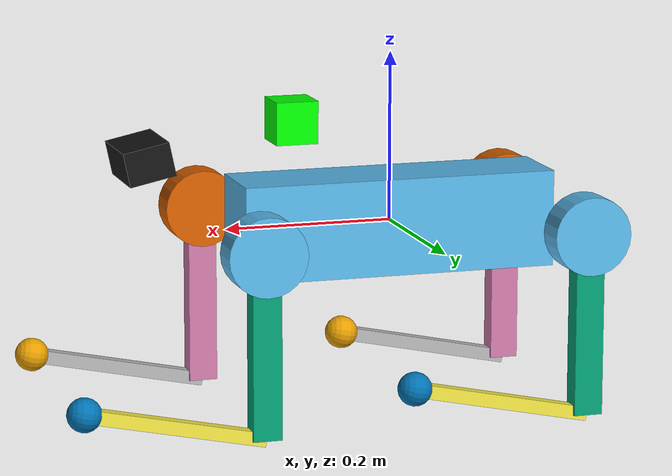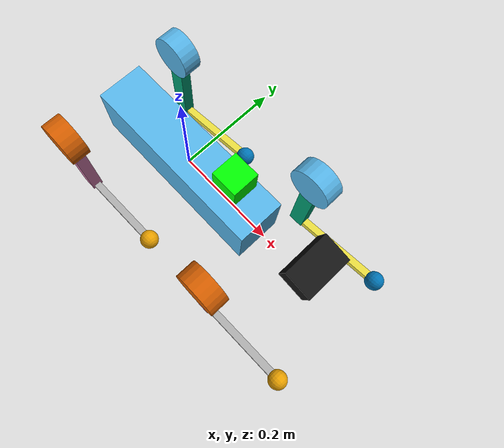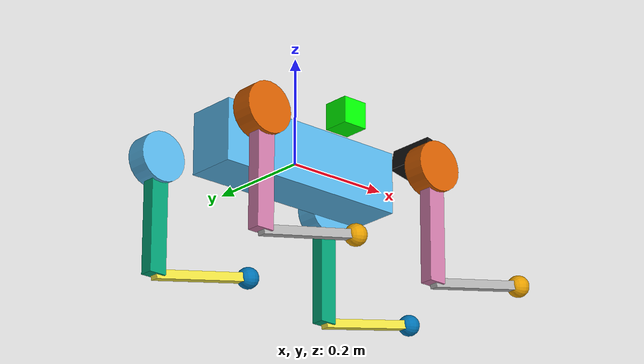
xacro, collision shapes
<?xml version="1.0"?>

<robot name="go2" xmlns:xacro="http://www.ros.org/wiki/xacro">

    <xacro:arg name="DEBUG" default="false"/>
    <xacro:arg name="xyz" default="0.12 0.0 0.175" />
    <xacro:arg name="rpy" default="0 0 0" />
    <xacro:arg name="use_camera" default="true"/>
    <xacro:arg name="use_lidar" default="false"/>
    <!-- Positive pitch rotates the camera optical axis from +X toward -Z. -->
    <xacro:arg name="camera_pitch" default="0.20944"/>

    <xacro:include filename="$(find go2_description)/xacro/const.xacro"/>
    <xacro:include filename="$(find go2_description)/xacro/materials.xacro"/>
    <xacro:include filename="$(find go2_description)/xacro/leg.xacro"/>
    <xacro:include filename="$(find go2_description)/xacro/gazebo.xacro"/>
    <xacro:if value="$(arg use_lidar)">
        <xacro:include filename="$(find velodyne_description)/urdf/HDL-32E.urdf.xacro"/>
    </xacro:if>

    <!-- Rotor related joint and link is only for demonstrate location. -->
    <!-- Actually, the rotor will rotate and the joint is not fixed. Reduction ratio should be considered. -->

    <!-- Debug mode will hung up the robot, use "true" or "false" to switch it. -->
    <xacro:if value="$(arg DEBUG)">
        <link name="world"/>
        <joint name="base_static_joint" type="fixed">
            <origin rpy="0 0 0" xyz="0 0 0"/>
            <parent link="world"/>
            <child link="base"/>
        </joint>
    </xacro:if>

    <link name="base">
        <visual>
            <origin rpy="0 0 0" xyz="0 0 0"/>
            <geometry>
                <box size="0.001 0.001 0.001"/>
            </geometry>
        </visual>
    </link>

    <joint name="floating_base" type="fixed">
        <origin rpy="0 0 0" xyz="0 0 0"/>
        <parent link="base"/>
        <child link="trunk"/>
    </joint>

    <link name="trunk">
        <visual>
            <origin rpy="0 0 0" xyz="0 0 0"/>
            <geometry>
                <mesh filename="package://go2_description/meshes/trunk.dae" scale="1 1 1"/>
            </geometry>
        </visual>
        <collision>
            <origin rpy="0 0 0" xyz="0 0 0"/>
            <geometry>
                <box size="${trunk_length} ${trunk_width} ${trunk_height}"/>
            </geometry>
        </collision>
        <inertial>
            <origin rpy="0 0 0" xyz="${trunk_com_x} ${trunk_com_y} ${trunk_com_z}"/>
            <mass value="${trunk_mass}"/>
            <inertia
                ixx="${trunk_ixx}" ixy="${trunk_ixy}" ixz="${trunk_ixz}"
                iyy="${trunk_iyy}" iyz="${trunk_iyz}"
                izz="${trunk_izz}"/>
        </inertial>
    </link>

    <joint name="imu_joint" type="fixed">
        <parent link="trunk"/>
        <child link="imu_link"/>
        <origin xyz="0.12 0 0.125" rpy="0 0 0"/>
    </joint>

    <!-- IMU -->
    <link name="imu_link">
        <collision>
        <origin xyz="0 0 0" rpy="0 0 0"/>
        <geometry>
            <box size="0.05 0.05 0.05"/>
        </geometry>
        </collision>
        <visual>
        <origin xyz="0 0 0" rpy="0 0 0"/>
        <geometry>
            <box size="0.05 0.05 0.05"/>
        </geometry>
        <material name="green">
            <color rgba="0 1 0 1"/>
        </material>
        </visual>
        <inertial>
        <mass value="1e-2" />
        <origin xyz="0 0 0" rpy="0 0 0"/>
        <inertia ixx="1e-6" ixy="0" ixz="0" iyy="1e-6" iyz="0" izz="1e-6" />
        </inertial>
    </link>

    <xacro:if value="$(arg use_camera)">
        <joint name="rgbd_camera_joint" type="fixed">
            <parent link="trunk"/>
            <child link="rgbd_camera_link"/>
            <origin rpy="0 $(arg camera_pitch) 0" xyz="0.30 0 0.09"/>
        </joint>

        <link name="rgbd_camera_link">
            <visual>
                <origin xyz="0 0 0" rpy="0 0 0"/>
                <geometry><box size="0.055 0.090 0.040"/></geometry>
                <material name="camera_dark">
                    <color rgba="0.08 0.08 0.08 1"/>
                </material>
            </visual>
            <collision>
                <origin xyz="0 0 0" rpy="0 0 0"/>
                <geometry><box size="0.055 0.090 0.040"/></geometry>
            </collision>
            <inertial>
                <mass value="0.08"/>
                <origin xyz="0 0 0" rpy="0 0 0"/>
                <inertia ixx="0.0000647" ixy="0" ixz="0"
                         iyy="0.0000377" iyz="0" izz="0.0000743"/>
            </inertial>
        </link>

        <!-- REP-103 optical coordinates: Z forward, X right, Y down. -->
        <joint name="rgbd_camera_optical_joint" type="fixed">
            <parent link="rgbd_camera_link"/>
            <child link="rgbd_camera_optical_frame"/>
            <origin xyz="0.028 0 0" rpy="-1.57079632679 0 -1.57079632679"/>
        </joint>
        <link name="rgbd_camera_optical_frame"/>

        <gazebo reference="rgbd_camera_link">
            <material>Gazebo/DarkGrey</material>
            <sensor name="rgbd_camera" type="depth">
                <always_on>true</always_on>
                <update_rate>10</update_rate>
                <!-- Avoid Gazebo 11 GUI re-creating the world's saved sun light. -->
                <visualize>false</visualize>
                <camera>
                    <horizontal_fov>1.570796327</horizontal_fov>
                    <image>
                        <width>640</width>
                        <height>480</height>
                        <format>R8G8B8</format>
                    </image>
                    <clip>
                        <near>0.1</near>
                        <far>100.0</far>
                    </clip>
                </camera>
                <plugin name="rgbd_camera_controller" filename="libgazebo_ros_openni_kinect.so">
                    <cameraName>rgbd_camera</cameraName>
                    <alwaysOn>true</alwaysOn>
                    <updateRate>10.0</updateRate>
                    <imageTopicName>image</imageTopicName>
                    <cameraInfoTopicName>camera_info</cameraInfoTopicName>
                    <depthImageTopicName>depth_image</depthImageTopicName>
                    <depthImageCameraInfoTopicName>depth_camera_info</depthImageCameraInfoTopicName>
                    <pointCloudTopicName>points</pointCloudTopicName>
                    <frameName>rgbd_camera_optical_frame</frameName>
                    <pointCloudCutoff>0.1</pointCloudCutoff>
                    <pointCloudCutoffMax>100.0</pointCloudCutoffMax>
                    <baseline>0.0</baseline>
                    <distortionK1>0.0</distortionK1>
                    <distortionK2>0.0</distortionK2>
                    <distortionK3>0.0</distortionK3>
                    <distortionT1>0.0</distortionT1>
                    <distortionT2>0.0</distortionT2>
                </plugin>
            </sensor>
        </gazebo>
    </xacro:if>

    <xacro:if value="$(arg use_lidar)">
      <!-- LiDAR mounting mast: visual-only pole connecting the trunk to the Velodyne -->
      <joint name="lidar_mount_joint" type="fixed">
          <parent link="trunk"/>
          <child link="lidar_mount"/>
          <origin xyz="0.12 0 0.088" rpy="0 0 0"/>
      </joint>

    <link name="lidar_mount">
        <visual>
            <origin xyz="0 0 0" rpy="0 0 0"/>
            <geometry>
                <cylinder radius="0.015" length="0.176"/>
            </geometry>
            <material name="dark_gray">
                <color rgba="0.2 0.2 0.2 1.0"/>
            </material>
        </visual>
        <inertial>
            <origin xyz="0 0 0" rpy="0 0 0"/>
            <mass value="0.01"/>
            <inertia ixx="1e-5" ixy="0" ixz="0" iyy="1e-5" iyz="0" izz="1e-5"/>
        </inertial>
    </link>

    <gazebo reference="lidar_mount">
        <material>Gazebo/DarkGrey</material>
    </gazebo>

      <xacro:HDL-32E parent="trunk" name="velodyne" topic="/velodyne_points" hz="10" min_range="0.3">
          <origin xyz="0.12 0.0 0.175" rpy="0 0 0" />
      </xacro:HDL-32E>
    </xacro:if>

    <!-- Livox-Mid360  -->

    <xacro:leg name="FR" mirror="-1" mirror_dae= "False" front_hind="1"  front_hind_dae="True"  />
    <xacro:leg name="FL" mirror="1"  mirror_dae="True"   front_hind="1"  front_hind_dae="True"  />
    <xacro:leg name="RR" mirror="-1" mirror_dae="False"  front_hind="-1" front_hind_dae="False" />
    <xacro:leg name="RL" mirror="1"  mirror_dae="True"   front_hind="-1" front_hind_dae="False" />
</robot>

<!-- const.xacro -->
<robot xmlns:xacro="http://www.ros.org/wiki/xacro">

    <!-- Constants for robot dimensions -->
    <xacro:property name="PI" value="3.1415926535897931"/>
    <xacro:property name="stick_mass" value="0.00001"/>

    <!-- simplified collision value -->
    <xacro:property name="trunk_width" value="0.0935"/>
    <xacro:property name="trunk_length" value="0.3762"/>
    <xacro:property name="trunk_height" value="0.114"/>
    <xacro:property name="hip_radius" value="0.046"/>
    <xacro:property name="hip_length" value="0.04"/>
    <xacro:property name="thigh_shoulder_radius" value="0.041"/>
    <xacro:property name="thigh_shoulder_length" value="0.032"/>
    <xacro:property name="thigh_width" value="0.0245"/>
    <xacro:property name="thigh_height" value="0.034"/>
    <xacro:property name="calf_width" value="0.016"/>
    <xacro:property name="calf_height" value="0.016"/>
    <xacro:property name="foot_radius" value="0.02"/>
    <xacro:property name="stick_radius" value="0.01"/>
    <xacro:property name="stick_length" value="0.2"/>

    <!-- kinematic value -->
    <xacro:property name="thigh_offset" value="0.0955"/>
    <xacro:property name="thigh_length" value="0.213"/>
    <xacro:property name="calf_length" value="0.213"/>

    <!-- leg offset from trunk center value -->
    <xacro:property name="leg_offset_x" value="0.1934"/>
    <xacro:property name="leg_offset_y" value="0.0465"/>
    <xacro:property name="hip_offset" value="0.0955"/>

    <!-- offset of link locations (left front) -->
    <xacro:property name="hip_offset_x" value="0.1934"/>
    <xacro:property name="hip_offset_y" value="0.0465"/>
    <xacro:property name="hip_offset_z" value="0.0"/>

    <xacro:property name="thigh_offset_x" value="0"/>
    <xacro:property name="thigh_offset_y" value="0.0955"/>
    <xacro:property name="thigh_offset_z" value="0.0"/>

    <xacro:property name="calf_offset_x" value="0.0"/>
    <xacro:property name="calf_offset_y" value="0.0"/>
    <xacro:property name="calf_offset_z" value="-0.213"/>

    <!-- joint limits -->
    <xacro:property name="damping" value="0.0"/>
    <xacro:property name="friction" value="0.0"/>
    <xacro:property name="hip_position_max" value="1.0472"/>
    <xacro:property name="hip_position_min" value="-1.0472"/>
    <xacro:property name="hip_velocity_max" value="30.1"/>
    <xacro:property name="hip_torque_max" value="23.7"/>
    <xacro:property name="thigh_position_max" value="3.4907"/>
    <xacro:property name="thigh_position_min" value="-1.5708"/>
    <xacro:property name="thigh_velocity_max" value="30.1"/>
    <xacro:property name="thigh_torque_max" value="23.7"/>
    <xacro:property name="calf_position_max" value="-0.83776"/>
    <xacro:property name="calf_position_min" value="-2.7227"/>
    <xacro:property name="calf_velocity_max" value="20.06"/>
    <xacro:property name="calf_torque_max" value="35.55"/>

    <!-- dynamics inertial value -->
    <!-- trunk -->
    <xacro:property name="trunk_mass" value="6.921"/>
    <xacro:property name="trunk_com_x" value="0.021112"/>
    <xacro:property name="trunk_com_y" value="0.00"/>
    <xacro:property name="trunk_com_z" value="-0.005366"/>
    <xacro:property name="trunk_ixx" value="0.02448"/>
    <xacro:property name="trunk_ixy" value="0.00012166"/>
    <xacro:property name="trunk_ixz" value="0.0014849"/>
    <xacro:property name="trunk_iyy" value="0.098077"/>
    <xacro:property name="trunk_iyz" value="-3.12E-05"/>
    <xacro:property name="trunk_izz" value="0.107"/>

    <!-- hip (left front) -->
    <xacro:property name="hip_mass" value="0.678"/>
    <xacro:property name="hip_com_x" value="-0.0054"/>
    <xacro:property name="hip_com_y" value="0.00194"/>
    <xacro:property name="hip_com_z" value="-0.000105"/>
    <xacro:property name="hip_ixx" value="0.00048"/>
    <xacro:property name="hip_ixy" value="-3.01E-06"/>
    <xacro:property name="hip_ixz" value="1.11E-06"/>
    <xacro:property name="hip_iyy" value="0.000884"/>
    <xacro:property name="hip_iyz" value="-1.42E-06"/>
    <xacro:property name="hip_izz" value="0.000596"/>

    <!-- thigh -->
    <xacro:property name="thigh_mass" value="1.152"/>
    <xacro:property name="thigh_com_x" value="-0.00374"/>
    <xacro:property name="thigh_com_y" value="-0.0223"/>
    <xacro:property name="thigh_com_z" value="-0.0327"/>
    <xacro:property name="thigh_ixx" value="0.00584"/>
    <xacro:property name="thigh_ixy" value="8.72E-05"/>
    <xacro:property name="thigh_ixz" value="-0.000289"/>
    <xacro:property name="thigh_iyy" value="0.0058"/>
    <xacro:property name="thigh_iyz" value="0.000808"/>
    <xacro:property name="thigh_izz" value="0.00103"/>

    <!-- calf -->
    <xacro:property name="calf_mass" value="0.154"/>
    <xacro:property name="calf_com_x" value="0.00548"/>
    <xacro:property name="calf_com_y" value="-0.000975"/>
    <xacro:property name="calf_com_z" value="-0.115"/>
    <xacro:property name="calf_ixx" value="0.00108"/>
    <xacro:property name="calf_ixy" value="3.4E-07"/>
    <xacro:property name="calf_ixz" value="1.72E-05"/>
    <xacro:property name="calf_iyy" value="0.0011"/>
    <xacro:property name="calf_iyz" value="8.28E-06"/>
    <xacro:property name="calf_izz" value="3.29E-05"/>

    <!-- foot -->
    <xacro:property name="foot_mass" value="0.06"/>

</robot>

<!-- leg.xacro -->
<robot xmlns:xacro="http://www.ros.org/wiki/xacro">

    <xacro:include filename="$(find go2_description)/xacro/transmission.xacro"/>

    <xacro:macro name="leg" params="name mirror mirror_dae front_hind front_hind_dae">

        <joint name="${name}_hip_joint" type="revolute">
            <xacro:if value="${(mirror_dae == False) and (front_hind_dae == True)}">
                <origin rpy="0 0 0" xyz="${leg_offset_x} ${-leg_offset_y} 0"/>
            </xacro:if>
            <xacro:if value="${(mirror_dae == True) and (front_hind_dae == True)}">
                <origin rpy="0 0 0" xyz="${leg_offset_x} ${leg_offset_y} 0"/>
            </xacro:if>
            <xacro:if value="${(mirror_dae == False) and (front_hind_dae == False)}">
                <origin rpy="0 0 0" xyz="${-leg_offset_x} ${-leg_offset_y} 0"/>
            </xacro:if>
            <xacro:if value="${(mirror_dae == True) and (front_hind_dae == False)}">
                <origin rpy="0 0 0" xyz="${-leg_offset_x} ${leg_offset_y} 0"/>
            </xacro:if>
            <parent link="trunk"/>
            <child link="${name}_hip"/>
            <axis xyz="1 0 0"/>
            <dynamics damping="${damping}" friction="${friction}"/>
            <xacro:if value="${(mirror_dae == True)}">
                <limit effort="${hip_torque_max}" velocity="${hip_velocity_max}" lower="${hip_position_min}" upper="${hip_position_max}"/>
            </xacro:if>
            <xacro:if value="${(mirror_dae == False)}">
                <limit effort="${hip_torque_max}" velocity="${hip_velocity_max}" lower="${-hip_position_max}" upper="${-hip_position_min}"/>
            </xacro:if>
        </joint>

        <link name="${name}_hip">
            <visual>
                <xacro:if value="${(mirror_dae == True) and (front_hind_dae == True)}">
                    <origin rpy="0 0 0" xyz="0 0 0"/>
                </xacro:if>
                <xacro:if value="${(mirror_dae == False) and (front_hind_dae == True)}">
                    <origin rpy="${PI} 0 0" xyz="0 0 0"/>
                </xacro:if>
                <xacro:if value="${(mirror_dae == True) and (front_hind_dae == False)}">
                    <origin rpy="0 ${PI} 0" xyz="0 0 0"/>
                </xacro:if>
                <xacro:if value="${(mirror_dae == False) and (front_hind_dae == False)}">
                    <origin rpy="${PI} ${PI} 0" xyz="0 0 0"/>
                </xacro:if>
                <geometry>
                    <mesh filename="package://go2_description/meshes/hip.dae" scale="1 1 1"/>
                </geometry>
            </visual>
            <collision>
                <origin rpy="${PI/2.0} 0 0" xyz="0 ${hip_offset*mirror} 0"/>
                <geometry>
                    <cylinder length="${hip_length}" radius="${hip_radius}"/>
                </geometry>
            </collision>
            <inertial>
                <origin rpy="0 0 0" xyz="${hip_com_x*front_hind} ${hip_com_y*mirror} ${hip_com_z}"/>
                <mass value="${hip_mass}"/>
                <inertia
                    ixx="${hip_ixx}" ixy="${hip_ixy*mirror*front_hind}" ixz="${hip_ixz*front_hind}"
                    iyy="${hip_iyy}" iyz="${hip_iyz*mirror}"
                    izz="${hip_izz}"/>
            </inertial>
        </link>

        <joint name="${name}_thigh_joint" type="revolute">
            <origin rpy="0 0 0" xyz="0 ${thigh_offset*mirror} 0"/>
            <parent link="${name}_hip"/>
            <child link="${name}_thigh"/>
            <axis xyz="0 1 0"/>
            <dynamics damping="${damping}" friction="${friction}"/>
            <limit effort="${thigh_torque_max}" velocity="${thigh_velocity_max}" lower="${thigh_position_min}" upper="${thigh_position_max}"/>
        </joint>

        <link name="${name}_thigh">
            <visual>
                <origin rpy="0 0 0" xyz="0 0 0"/>
                <geometry>
                    <xacro:if value="${mirror_dae == True}">
                        <mesh filename="package://go2_description/meshes/thigh.dae" scale="1 1 1"/>
                    </xacro:if>
                    <xacro:if value="${mirror_dae == False}">
                        <mesh filename="package://go2_description/meshes/thigh_mirror.dae" scale="1 1 1"/>
                    </xacro:if>
                </geometry>
            </visual>
            <collision>
                <origin rpy="0 ${PI/2.0} 0" xyz="0 0 ${-thigh_length/2.0}"/>
                <geometry>
                    <box size="${thigh_length} ${thigh_width} ${thigh_height}"/>
                </geometry>
            </collision>
            <inertial>
                <origin rpy="0 0 0" xyz="${thigh_com_x} ${thigh_com_y*mirror} ${thigh_com_z}"/>
                <mass value="${thigh_mass}"/>
                <inertia
                    ixx="${thigh_ixx}" ixy="${thigh_ixy*mirror}" ixz="${thigh_ixz}"
                    iyy="${thigh_iyy}" iyz="${thigh_iyz*mirror}"
                    izz="${thigh_izz}"/>
            </inertial>
        </link>

        <joint name="${name}_calf_joint" type="revolute">
            <origin rpy="0 0 0" xyz="0 0 ${-thigh_length}"/>
            <parent link="${name}_thigh"/>
            <child link="${name}_calf"/>
            <axis xyz="0 1 0"/>
            <dynamics damping="${damping}" friction="${friction}"/>
            <limit effort="${calf_torque_max}" velocity="${calf_velocity_max}" lower="${calf_position_min}" upper="${calf_position_max}"/>
        </joint>

        <link name="${name}_calf">
            <visual>
                <origin rpy="0 0 0" xyz="0 0 0"/>
                <geometry>
                    <mesh filename="package://go2_description/meshes/calf.dae" scale="1 1 1"/>
                </geometry>
            </visual>
            <collision>
                <origin rpy="0 ${PI/2.0} 0" xyz="0 0 ${-calf_length/2.0}"/>
                <geometry>
                    <box size="${calf_length} ${calf_width} ${calf_height}"/>
                </geometry>
            </collision>
            <inertial>
                <origin rpy="0 0 0" xyz="${calf_com_x} ${calf_com_y} ${calf_com_z}"/>
                <mass value="${calf_mass}"/>
                <inertia
                    ixx="${calf_ixx}" ixy="${calf_ixy}" ixz="${calf_ixz}"
                    iyy="${calf_iyy}" iyz="${calf_iyz}"
                    izz="${calf_izz}"/>
            </inertial>
        </link>

        <joint name="${name}_foot_fixed" type="fixed">0
            <origin rpy="0 0 0" xyz="0 0 ${-(calf_length)}"/>
            <parent link="${name}_calf"/>
            <child link="${name}_foot"/>
        </joint>

        <link name="${name}_foot">
            <visual>
                <origin rpy="0 0 0" xyz="0 0 0"/>
                <geometry>
                    <sphere radius="${foot_radius-0.01}"/>
                </geometry>
            </visual>
            <collision>
                <origin rpy="0 0 0" xyz="0 0 0"/>
                <geometry>
                    <sphere radius="${foot_radius}"/>
                </geometry>
            </collision>
            <inertial>
                <mass value="${foot_mass}"/>
                <inertia
                    ixx="${(2*foot_mass)/5.0*(foot_radius*foot_radius)}" ixy="0.0" ixz="0.0"
                    iyy="${(2*foot_mass)/5.0*(foot_radius*foot_radius)}" iyz="0.0"
                    izz="${(2*foot_mass)/5.0*(foot_radius*foot_radius)}"/>
            </inertial>
        </link>

        <xacro:leg_transmission name="${name}"/>
    </xacro:macro>
</robot>
